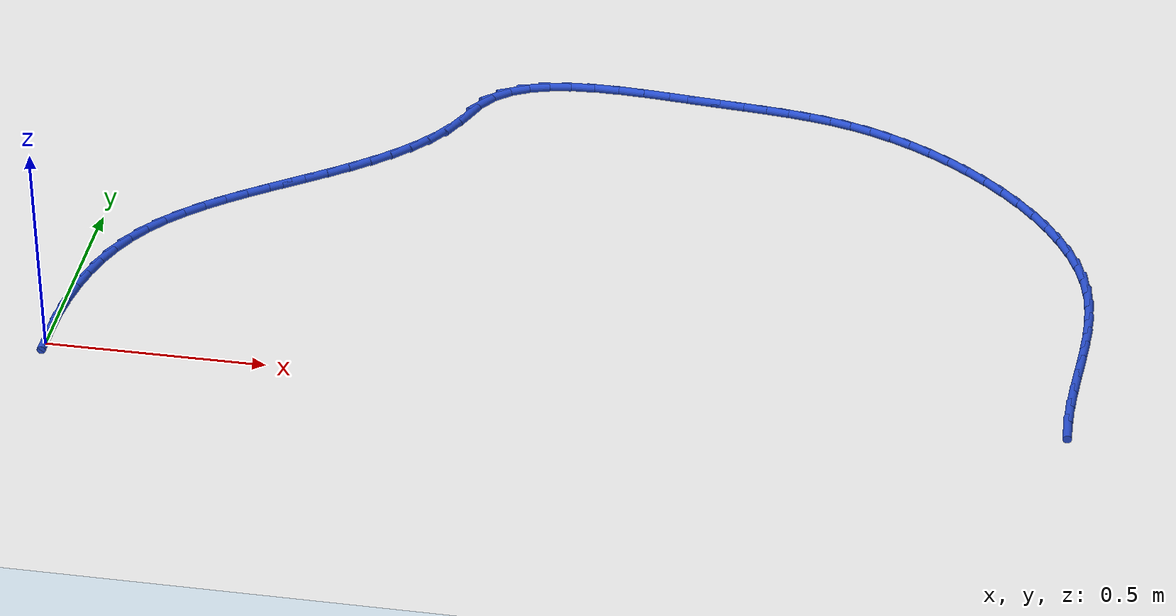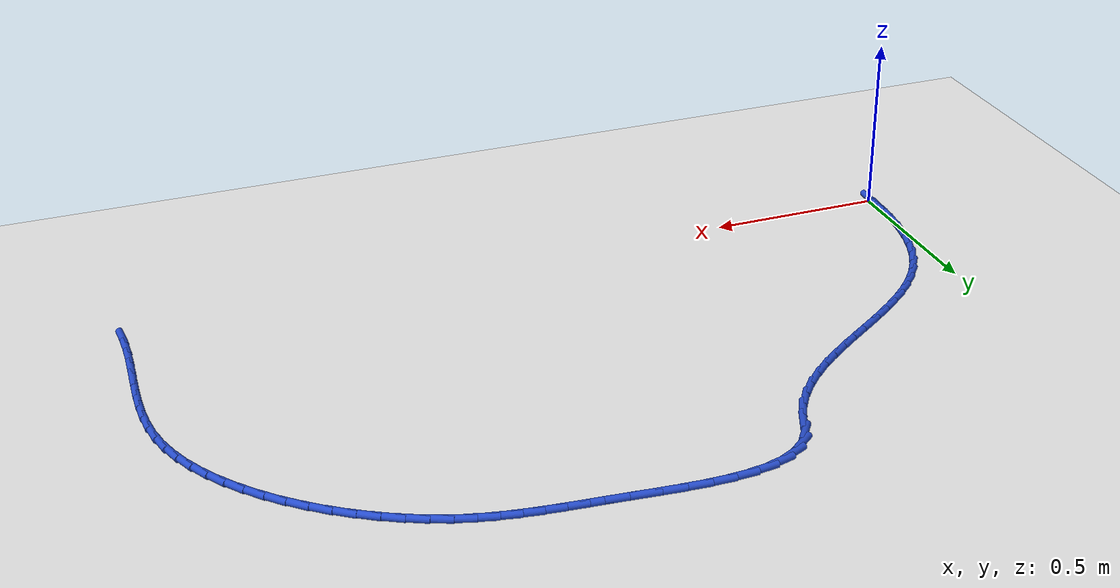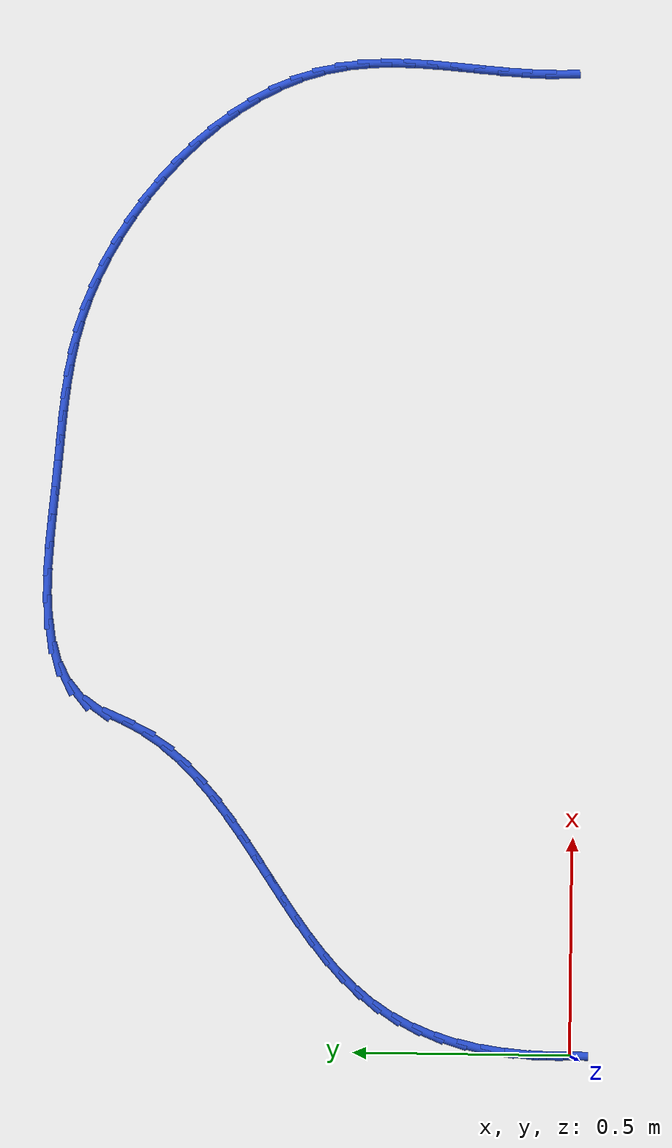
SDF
<sdf version="1.6">
 <world name="default">
  <model name="ground_plane">
   <static>1</static>
   <link name="link">
    <collision name="collision">
     <geometry><plane><normal>0 0 1</normal><size>100 100</size></plane></geometry>
     <surface><friction><ode><mu>100</mu><mu2>50</mu2></ode></friction></surface>
    </collision>
    <visual name="visual">
     <cast_shadows>0</cast_shadows>
     <geometry><plane><normal>0 0 1</normal><size>100 100</size></plane></geometry>
     <material>
      <script><uri>file://media/materials/scripts/gazebo.material</uri><name>Gazebo/WhiteGlow</name></script>
     </material>
    </visual>
   </link>
  </model>
  <model name="line">
   <link name="link_0">
    <pose>-6.938893903907228e-18 -1.3877787807814457e-16 0.01 0 1.57 1.5702225282403262</pose>
    <collision name="collision">
     <geometry><cylinder><radius>0.01</radius><length>0.08</length></cylinder></geometry>
    </collision>
    <visual name="visual">
     <material>
      <script><name>Gazebo/Blue</name><uri>file://media/materials/scripts/gazebo.material</uri></script>
     </material>
     <geometry><cylinder><radius>0.01</radius><length>0.08</length></cylinder></geometry>
    </visual>
   </link>
   <link name="link_1">
    <pose>3.2122297887926364e-05 0.05598183213727158 0.01 0 1.57 1.5219617204032692</pose>
    <collision name="collision">
     <geometry><cylinder><radius>0.01</radius><length>0.08</length></cylinder></geometry>
    </collision>
    <visual name="visual">
     <material>
      <script><name>Gazebo/Blue</name><uri>file://media/materials/scripts/gazebo.material</uri></script>
     </material>
     <geometry><cylinder><radius>0.01</radius><length>0.08</length></cylinder></geometry>
    </visual>
   </link>
   <link name="link_2">
    <pose>0.0027720591368958205 0.1120436827521187 0.01 0 1.57 1.4680645423843748</pose>
    <collision name="collision">
     <geometry><cylinder><radius>0.01</radius><length>0.08</length></cylinder></geometry>
    </collision>
    <visual name="visual">
     <material>
      <script><name>Gazebo/Blue</name><uri>file://media/materials/scripts/gazebo.material</uri></script>
     </material>
     <geometry><cylinder><radius>0.01</radius><length>0.08</length></cylinder></geometry>
    </visual>
   </link>
   <link name="link_3">
    <pose>0.008510602290415246 0.1677065053002968 0.01 0 1.57 1.4074748132549735</pose>
    <collision name="collision">
     <geometry><cylinder><radius>0.01</radius><length>0.08</length></cylinder></geometry>
    </collision>
    <visual name="visual">
     <material>
      <script><name>Gazebo/Blue</name><uri>file://media/materials/scripts/gazebo.material</uri></script>
     </material>
     <geometry><cylinder><radius>0.01</radius><length>0.08</length></cylinder></geometry>
    </visual>
   </link>
   <link name="link_4">
    <pose>0.017538543531837758 0.22249125323756133 0.01 0 1.57 1.3390508978373714</pose>
    <collision name="collision">
     <geometry><cylinder><radius>0.01</radius><length>0.08</length></cylinder></geometry>
    </collision>
    <visual name="visual">
     <material>
      <script><name>Gazebo/Blue</name><uri>file://media/materials/scripts/gazebo.material</uri></script>
     </material>
     <geometry><cylinder><radius>0.01</radius><length>0.08</length></cylinder></geometry>
    </visual>
   </link>
   <link name="link_5">
    <pose>0.030146674634554928 0.2759188800196679 0.01 0 1.57 1.261623660727146</pose>
    <collision name="collision">
     <geometry><cylinder><radius>0.01</radius><length>0.08</length></cylinder></geometry>
    </collision>
    <visual name="visual">
     <material>
      <script><name>Gazebo/Blue</name><uri>file://media/materials/scripts/gazebo.material</uri></script>
     </material>
     <geometry><cylinder><radius>0.01</radius><length>0.08</length></cylinder></geometry>
    </visual>
   </link>
   <link name="link_6">
    <pose>0.046625787371958355 0.3275103391023724 0.01 0 1.57 1.1741198629882972</pose>
    <collision name="collision">
     <geometry><cylinder><radius>0.01</radius><length>0.08</length></cylinder></geometry>
    </collision>
    <visual name="visual">
     <material>
      <script><name>Gazebo/Blue</name><uri>file://media/materials/scripts/gazebo.material</uri></script>
     </material>
     <geometry><cylinder><radius>0.01</radius><length>0.08</length></cylinder></geometry>
    </visual>
   </link>
   <link name="link_7">
    <pose>0.06726667351743955 0.37678658394142994 0.01 0 1.57 1.0757766695661761</pose>
    <collision name="collision">
     <geometry><cylinder><radius>0.01</radius><length>0.08</length></cylinder></geometry>
    </collision>
    <visual name="visual">
     <material>
      <script><name>Gazebo/Blue</name><uri>file://media/materials/scripts/gazebo.material</uri></script>
     </material>
     <geometry><cylinder><radius>0.01</radius><length>0.08</length></cylinder></geometry>
    </visual>
   </link>
   <link name="link_8">
    <pose>0.09236012484439016 0.4232685679925963 0.01 0 1.57 0.9682542700632496</pose>
    <collision name="collision">
     <geometry><cylinder><radius>0.01</radius><length>0.08</length></cylinder></geometry>
    </collision>
    <visual name="visual">
     <material>
      <script><name>Gazebo/Blue</name><uri>file://media/materials/scripts/gazebo.material</uri></script>
     </material>
     <geometry><cylinder><radius>0.01</radius><length>0.08</length></cylinder></geometry>
    </visual>
   </link>
   <link name="link_9">
    <pose>0.12212934081932303 0.4665456296009552 0.01 0 1.57 0.8677020030502103</pose>
    <collision name="collision">
     <geometry><cylinder><radius>0.01</radius><length>0.08</length></cylinder></geometry>
    </collision>
    <visual name="visual">
     <material>
      <script><name>Gazebo/Blue</name><uri>file://media/materials/scripts/gazebo.material</uri></script>
     </material>
     <geometry><cylinder><radius>0.01</radius><length>0.08</length></cylinder></geometry>
    </visual>
   </link>
   <link name="link_10">
    <pose>0.1562314809479822 0.5067797844155647 0.01 0 1.57 0.7831304092725138</pose>
    <collision name="collision">
     <geometry><cylinder><radius>0.01</radius><length>0.08</length></cylinder></geometry>
    </collision>
    <visual name="visual">
     <material>
      <script><name>Gazebo/Blue</name><uri>file://media/materials/scripts/gazebo.material</uri></script>
     </material>
     <geometry><cylinder><radius>0.01</radius><length>0.08</length></cylinder></geometry>
    </visual>
   </link>
   <link name="link_11">
    <pose>0.19404142945407982 0.5444186333068378 0.01 0 1.57 0.7148547844319686</pose>
    <collision name="collision">
     <geometry><cylinder><radius>0.01</radius><length>0.08</length></cylinder></geometry>
    </collision>
    <visual name="visual">
     <material>
      <script><name>Gazebo/Blue</name><uri>file://media/materials/scripts/gazebo.material</uri></script>
     </material>
     <geometry><cylinder><radius>0.01</radius><length>0.08</length></cylinder></geometry>
    </visual>
   </link>
   <link name="link_12">
    <pose>0.2349319980802108 0.5799118739280671 0.01 0 1.57 0.6622686260626698</pose>
    <collision name="collision">
     <geometry><cylinder><radius>0.01</radius><length>0.08</length></cylinder></geometry>
    </collision>
    <visual name="visual">
     <material>
      <script><name>Gazebo/Blue</name><uri>file://media/materials/scripts/gazebo.material</uri></script>
     </material>
     <geometry><cylinder><radius>0.01</radius><length>0.08</length></cylinder></geometry>
    </visual>
   </link>
   <link name="link_13">
    <pose>0.27827599856897034 0.613709203932545 0.01 0 1.57 0.6244390640483001</pose>
    <collision name="collision">
     <geometry><cylinder><radius>0.01</radius><length>0.08</length></cylinder></geometry>
    </collision>
    <visual name="visual">
     <material>
      <script><name>Gazebo/Blue</name><uri>file://media/materials/scripts/gazebo.material</uri></script>
     </material>
     <geometry><cylinder><radius>0.01</radius><length>0.08</length></cylinder></geometry>
    </visual>
   </link>
   <link name="link_14">
    <pose>0.32344624266295324 0.6462603209735643 0.01 0 1.57 0.6004649058718042</pose>
    <collision name="collision">
     <geometry><cylinder><radius>0.01</radius><length>0.08</length></cylinder></geometry>
    </collision>
    <visual name="visual">
     <material>
      <script><name>Gazebo/Blue</name><uri>file://media/materials/scripts/gazebo.material</uri></script>
     </material>
     <geometry><cylinder><radius>0.01</radius><length>0.08</length></cylinder></geometry>
    </visual>
   </link>
   <link name="link_15">
    <pose>0.3698155421047546 0.6780149227044174 0.01 0 1.57 0.5896772273931061</pose>
    <collision name="collision">
     <geometry><cylinder><radius>0.01</radius><length>0.08</length></cylinder></geometry>
    </collision>
    <visual name="visual">
     <material>
      <script><name>Gazebo/Blue</name><uri>file://media/materials/scripts/gazebo.material</uri></script>
     </material>
     <geometry><cylinder><radius>0.01</radius><length>0.08</length></cylinder></geometry>
    </visual>
   </link>
   <link name="link_16">
    <pose>0.41675670863696973 0.7094227067783972 0.01 0 1.57 0.5917354304771028</pose>
    <collision name="collision">
     <geometry><cylinder><radius>0.01</radius><length>0.08</length></cylinder></geometry>
    </collision>
    <visual name="visual">
     <material>
      <script><name>Gazebo/Blue</name><uri>file://media/materials/scripts/gazebo.material</uri></script>
     </material>
     <geometry><cylinder><radius>0.01</radius><length>0.08</length></cylinder></geometry>
    </visual>
   </link>
   <link name="link_17">
    <pose>0.46364255400219306 0.7409333708487956 0.01 0 1.57 0.6066603906495799</pose>
    <collision name="collision">
     <geometry><cylinder><radius>0.01</radius><length>0.08</length></cylinder></geometry>
    </collision>
    <visual name="visual">
     <material>
      <script><name>Gazebo/Blue</name><uri>file://media/materials/scripts/gazebo.material</uri></script>
     </material>
     <geometry><cylinder><radius>0.01</radius><length>0.08</length></cylinder></geometry>
    </visual>
   </link>
   <link name="link_18">
    <pose>0.50984588994302 0.7729966125689057 0.01 0 1.57 0.6348245065593896</pose>
    <collision name="collision">
     <geometry><cylinder><radius>0.01</radius><length>0.08</length></cylinder></geometry>
    </collision>
    <visual name="visual">
     <material>
      <script><name>Gazebo/Blue</name><uri>file://media/materials/scripts/gazebo.material</uri></script>
     </material>
     <geometry><cylinder><radius>0.01</radius><length>0.08</length></cylinder></geometry>
    </visual>
   </link>
   <link name="link_19">
    <pose>0.5547395282020455 0.8060621295920198 0.01 0 1.57 0.6768960546514915</pose>
    <collision name="collision">
     <geometry><cylinder><radius>0.01</radius><length>0.08</length></cylinder></geometry>
    </collision>
    <visual name="visual">
     <material>
      <script><name>Gazebo/Blue</name><uri>file://media/materials/scripts/gazebo.material</uri></script>
     </material>
     <geometry><cylinder><radius>0.01</radius><length>0.08</length></cylinder></geometry>
    </visual>
   </link>
   <link name="link_20">
    <pose>0.5976962805218647 0.8405796195714306 0.01 0 1.57 0.7337136986147049</pose>
    <collision name="collision">
     <geometry><cylinder><radius>0.01</radius><length>0.08</length></cylinder></geometry>
    </collision>
    <visual name="visual">
     <material>
      <script><name>Gazebo/Blue</name><uri>file://media/materials/scripts/gazebo.material</uri></script>
     </material>
     <geometry><cylinder><radius>0.01</radius><length>0.08</length></cylinder></geometry>
    </visual>
   </link>
   <link name="link_21">
    <pose>0.6380889586450723 0.8769987801604304 0.01 0 1.57 0.8060490777768412</pose>
    <collision name="collision">
     <geometry><cylinder><radius>0.01</radius><length>0.08</length></cylinder></geometry>
    </collision>
    <visual name="visual">
     <material>
      <script><name>Gazebo/Blue</name><uri>file://media/materials/scripts/gazebo.material</uri></script>
     </material>
     <geometry><cylinder><radius>0.01</radius><length>0.08</length></cylinder></geometry>
    </visual>
   </link>
   <link name="link_22">
    <pose>0.6752903743142635 0.9157693090123119 0.01 0 1.57 0.8942145418022549</pose>
    <collision name="collision">
     <geometry><cylinder><radius>0.01</radius><length>0.08</length></cylinder></geometry>
    </collision>
    <visual name="visual">
     <material>
      <script><name>Gazebo/Blue</name><uri>file://media/materials/scripts/gazebo.material</uri></script>
     </material>
     <geometry><cylinder><radius>0.01</radius><length>0.08</length></cylinder></geometry>
    </visual>
   </link>
   <link name="link_23">
    <pose>0.7086733392720335 0.9573409037803677 0.01 0 1.57 0.9975202933428055</pose>
    <collision name="collision">
     <geometry><cylinder><radius>0.01</radius><length>0.08</length></cylinder></geometry>
    </collision>
    <visual name="visual">
     <material>
      <script><name>Gazebo/Blue</name><uri>file://media/materials/scripts/gazebo.material</uri></script>
     </material>
     <geometry><cylinder><radius>0.01</radius><length>0.08</length></cylinder></geometry>
    </visual>
   </link>
   <link name="link_24">
    <pose>0.7376106652609772 1.0021632621178906 0.01 0 1.57 1.1136810013321163</pose>
    <collision name="collision">
     <geometry><cylinder><radius>0.01</radius><length>0.08</length></cylinder></geometry>
    </collision>
    <visual name="visual">
     <material>
      <script><name>Gazebo/Blue</name><uri>file://media/materials/scripts/gazebo.material</uri></script>
     </material>
     <geometry><cylinder><radius>0.01</radius><length>0.08</length></cylinder></geometry>
    </visual>
   </link>
   <link name="link_25">
    <pose>0.7614765124189773 1.0506847787572993 0.01 0 1.57 1.1640529269467912</pose>
    <collision name="collision">
     <geometry><cylinder><radius>0.01</radius><length>0.08</length></cylinder></geometry>
    </collision>
    <visual name="visual">
     <material>
      <script><name>Gazebo/Blue</name><uri>file://media/materials/scripts/gazebo.material</uri></script>
     </material>
     <geometry><cylinder><radius>0.01</radius><length>0.08</length></cylinder></geometry>
    </visual>
   </link>
   <link name="link_26">
    <pose>0.7828362127023534 1.1002702983695678 0.01 0 1.57 0.9549133107945891</pose>
    <collision name="collision">
     <geometry><cylinder><radius>0.01</radius><length>0.08</length></cylinder></geometry>
    </collision>
    <visual name="visual">
     <material>
      <script><name>Gazebo/Blue</name><uri>file://media/materials/scripts/gazebo.material</uri></script>
     </material>
     <geometry><cylinder><radius>0.01</radius><length>0.08</length></cylinder></geometry>
    </visual>
   </link>
   <link name="link_27">
    <pose>0.8117233404273001 1.1410879349267236 0.01 0 1.57 0.6807663889096673</pose>
    <collision name="collision">
     <geometry><cylinder><radius>0.01</radius><length>0.08</length></cylinder></geometry>
    </collision>
    <visual name="visual">
     <material>
      <script><name>Gazebo/Blue</name><uri>file://media/materials/scripts/gazebo.material</uri></script>
     </material>
     <geometry><cylinder><radius>0.01</radius><length>0.08</length></cylinder></geometry>
    </visual>
   </link>
   <link name="link_28">
    <pose>0.849546079573539 1.1717216953593381 0.01 0 1.57 0.4457332259470823</pose>
    <collision name="collision">
     <geometry><cylinder><radius>0.01</radius><length>0.08</length></cylinder></geometry>
    </collision>
    <visual name="visual">
     <material>
      <script><name>Gazebo/Blue</name><uri>file://media/materials/scripts/gazebo.material</uri></script>
     </material>
     <geometry><cylinder><radius>0.01</radius><length>0.08</length></cylinder></geometry>
    </visual>
   </link>
   <link name="link_29">
    <pose>0.8949709551513052 1.193425858319838 0.01 0 1.57 0.2650022575327565</pose>
    <collision name="collision">
     <geometry><cylinder><radius>0.01</radius><length>0.08</length></cylinder></geometry>
    </collision>
    <visual name="visual">
     <material>
      <script><name>Gazebo/Blue</name><uri>file://media/materials/scripts/gazebo.material</uri></script>
     </material>
     <geometry><cylinder><radius>0.01</radius><length>0.08</length></cylinder></geometry>
    </visual>
   </link>
   <link name="link_30">
    <pose>0.9466644879328847 1.2074547065882542 0.01 0 1.57 0.1335459545853411</pose>
    <collision name="collision">
     <geometry><cylinder><radius>0.01</radius><length>0.08</length></cylinder></geometry>
    </collision>
    <visual name="visual">
     <material>
      <script><name>Gazebo/Blue</name><uri>file://media/materials/scripts/gazebo.material</uri></script>
     </material>
     <geometry><cylinder><radius>0.01</radius><length>0.08</length></cylinder></geometry>
    </visual>
   </link>
   <link name="link_31">
    <pose>1.0032931986905642 1.2150625229446157 0.01 0 1.57 0.0405066478310615</pose>
    <collision name="collision">
     <geometry><cylinder><radius>0.01</radius><length>0.08</length></cylinder></geometry>
    </collision>
    <visual name="visual">
     <material>
      <script><name>Gazebo/Blue</name><uri>file://media/materials/scripts/gazebo.material</uri></script>
     </material>
     <geometry><cylinder><radius>0.01</radius><length>0.08</length></cylinder></geometry>
    </visual>
   </link>
   <link name="link_32">
    <pose>1.0635236081966288 1.217503590168953 0.01 0 1.57 -0.023538554221004135</pose>
    <collision name="collision">
     <geometry><cylinder><radius>0.01</radius><length>0.08</length></cylinder></geometry>
    </collision>
    <visual name="visual">
     <material>
      <script><name>Gazebo/Blue</name><uri>file://media/materials/scripts/gazebo.material</uri></script>
     </material>
     <geometry><cylinder><radius>0.01</radius><length>0.08</length></cylinder></geometry>
    </visual>
   </link>
   <link name="link_33">
    <pose>1.126022237223365 1.2160321910412966 0.01 0 1.57 -0.0650093727919637</pose>
    <collision name="collision">
     <geometry><cylinder><radius>0.01</radius><length>0.08</length></cylinder></geometry>
    </collision>
    <visual name="visual">
     <material>
      <script><name>Gazebo/Blue</name><uri>file://media/materials/scripts/gazebo.material</uri></script>
     </material>
     <geometry><cylinder><radius>0.01</radius><length>0.08</length></cylinder></geometry>
    </visual>
   </link>
   <link name="link_34">
    <pose>1.1894556065430593 1.2119026083416746 0.01 0 1.57 -0.08756035886712663</pose>
    <collision name="collision">
     <geometry><cylinder><radius>0.01</radius><length>0.08</length></cylinder></geometry>
    </collision>
    <visual name="visual">
     <material>
      <script><name>Gazebo/Blue</name><uri>file://media/materials/scripts/gazebo.material</uri></script>
     </material>
     <geometry><cylinder><radius>0.01</radius><length>0.08</length></cylinder></geometry>
    </visual>
   </link>
   <link name="link_35">
    <pose>1.2524902369279975 1.2063691248501192 0.01 0 1.57 -0.09244694729825857</pose>
    <collision name="collision">
     <geometry><cylinder><radius>0.01</radius><length>0.08</length></cylinder></geometry>
    </collision>
    <visual name="visual">
     <material>
      <script><name>Gazebo/Blue</name><uri>file://media/materials/scripts/gazebo.material</uri></script>
     </material>
     <geometry><cylinder><radius>0.01</radius><length>0.08</length></cylinder></geometry>
    </visual>
   </link>
   <link name="link_36">
    <pose>1.3137929698151114 1.2006856740142207 0.01 0 1.57 -0.08521738920645766</pose>
    <collision name="collision">
     <geometry><cylinder><radius>0.01</radius><length>0.08</length></cylinder></geometry>
    </collision>
    <visual name="visual">
     <material>
      <script><name>Gazebo/Blue</name><uri>file://media/materials/scripts/gazebo.material</uri></script>
     </material>
     <geometry><cylinder><radius>0.01</radius><length>0.08</length></cylinder></geometry>
    </visual>
   </link>
   <link name="link_37">
    <pose>1.3724245067854208 1.195677117583411 0.01 0 1.57 -0.08475441747929263</pose>
    <collision name="collision">
     <geometry><cylinder><radius>0.01</radius><length>0.08</length></cylinder></geometry>
    </collision>
    <visual name="visual">
     <material>
      <script><name>Gazebo/Blue</name><uri>file://media/materials/scripts/gazebo.material</uri></script>
     </material>
     <geometry><cylinder><radius>0.01</radius><length>0.08</length></cylinder></geometry>
    </visual>
   </link>
   <link name="link_38">
    <pose>1.428606067224941 1.1909040478632285 0.01 0 1.57 -0.09586782875110215</pose>
    <collision name="collision">
     <geometry><cylinder><radius>0.01</radius><length>0.08</length></cylinder></geometry>
    </collision>
    <visual name="visual">
     <material>
      <script><name>Gazebo/Blue</name><uri>file://media/materials/scripts/gazebo.material</uri></script>
     </material>
     <geometry><cylinder><radius>0.01</radius><length>0.08</length></cylinder></geometry>
    </visual>
   </link>
   <link name="link_39">
    <pose>1.4827715601830687 1.1856953527930372 0.01 0 1.57 -0.11953076735419567</pose>
    <collision name="collision">
     <geometry><cylinder><radius>0.01</radius><length>0.08</length></cylinder></geometry>
    </collision>
    <visual name="visual">
     <material>
      <script><name>Gazebo/Blue</name><uri>file://media/materials/scripts/gazebo.material</uri></script>
     </material>
     <geometry><cylinder><radius>0.01</radius><length>0.08</length></cylinder></geometry>
    </visual>
   </link>
   <link name="link_40">
    <pose>1.5353548947091977 1.1793799203122013 0.01 0 1.57 -0.1560698015272833</pose>
    <collision name="collision">
     <geometry><cylinder><radius>0.01</radius><length>0.08</length></cylinder></geometry>
    </collision>
    <visual name="visual">
     <material>
      <script><name>Gazebo/Blue</name><uri>file://media/materials/scripts/gazebo.material</uri></script>
     </material>
     <geometry><cylinder><radius>0.01</radius><length>0.08</length></cylinder></geometry>
    </visual>
   </link>
   <link name="link_41">
    <pose>1.5867899798527234 1.1712866383600833 0.01 0 1.57 -0.20493091976538488</pose>
    <collision name="collision">
     <geometry><cylinder><radius>0.01</radius><length>0.08</length></cylinder></geometry>
    </collision>
    <visual name="visual">
     <material>
      <script><name>Gazebo/Blue</name><uri>file://media/materials/scripts/gazebo.material</uri></script>
     </material>
     <geometry><cylinder><radius>0.01</radius><length>0.08</length></cylinder></geometry>
    </visual>
   </link>
   <link name="link_42">
    <pose>1.63751072466304 1.1607443948760483 0.01 0 1.57 -0.2645142195695105</pose>
    <collision name="collision">
     <geometry><cylinder><radius>0.01</radius><length>0.08</length></cylinder></geometry>
    </collision>
    <visual name="visual">
     <material>
      <script><name>Gazebo/Blue</name><uri>file://media/materials/scripts/gazebo.material</uri></script>
     </material>
     <geometry><cylinder><radius>0.01</radius><length>0.08</length></cylinder></geometry>
    </visual>
   </link>
   <link name="link_43">
    <pose>1.687951038189544 1.1470820777994597 0.01 0 1.57 -0.3314979268367801</pose>
    <collision name="collision">
     <geometry><cylinder><radius>0.01</radius><length>0.08</length></cylinder></geometry>
    </collision>
    <visual name="visual">
     <material>
      <script><name>Gazebo/Blue</name><uri>file://media/materials/scripts/gazebo.material</uri></script>
     </material>
     <geometry><cylinder><radius>0.01</radius><length>0.08</length></cylinder></geometry>
    </visual>
   </link>
   <link name="link_44">
    <pose>1.738491869899307 1.12968595402742 0.01 0 1.57 -0.3973964685917838</pose>
    <collision name="collision">
     <geometry><cylinder><radius>0.01</radius><length>0.08</length></cylinder></geometry>
    </collision>
    <visual name="visual">
     <material>
      <script><name>Gazebo/Blue</name><uri>file://media/materials/scripts/gazebo.material</uri></script>
     </material>
     <geometry><cylinder><radius>0.01</radius><length>0.08</length></cylinder></geometry>
    </visual>
   </link>
   <link name="link_45">
    <pose>1.7890196943327938 1.1084780283664384 0.01 0 1.57 -0.4594868693141899</pose>
    <collision name="collision">
     <geometry><cylinder><radius>0.01</radius><length>0.08</length></cylinder></geometry>
    </collision>
    <visual name="visual">
     <material>
      <script><name>Gazebo/Blue</name><uri>file://media/materials/scripts/gazebo.material</uri></script>
     </material>
     <geometry><cylinder><radius>0.01</radius><length>0.08</length></cylinder></geometry>
    </visual>
   </link>
   <link name="link_46">
    <pose>1.8391514358935992 1.083672349201045 0.01 0 1.57 -0.5189401493082975</pose>
    <collision name="collision">
     <geometry><cylinder><radius>0.01</radius><length>0.08</length></cylinder></geometry>
    </collision>
    <visual name="visual">
     <material>
      <script><name>Gazebo/Blue</name><uri>file://media/materials/scripts/gazebo.material</uri></script>
     </material>
     <geometry><cylinder><radius>0.01</radius><length>0.08</length></cylinder></geometry>
    </visual>
   </link>
   <link name="link_47">
    <pose>1.8885013043271217 1.055485906106975 0.01 0 1.57 -0.5768388179129491</pose>
    <collision name="collision">
     <geometry><cylinder><radius>0.01</radius><length>0.08</length></cylinder></geometry>
    </collision>
    <visual name="visual">
     <material>
      <script><name>Gazebo/Blue</name><uri>file://media/materials/scripts/gazebo.material</uri></script>
     </material>
     <geometry><cylinder><radius>0.01</radius><length>0.08</length></cylinder></geometry>
    </visual>
   </link>
   <link name="link_48">
    <pose>1.9366835093787633 1.0241356886599629 0.01 0 1.57 -0.6341779881410391</pose>
    <collision name="collision">
     <geometry><cylinder><radius>0.01</radius><length>0.08</length></cylinder></geometry>
    </collision>
    <visual name="visual">
     <material>
      <script><name>Gazebo/Blue</name><uri>file://media/materials/scripts/gazebo.material</uri></script>
     </material>
     <geometry><cylinder><radius>0.01</radius><length>0.08</length></cylinder></geometry>
    </visual>
   </link>
   <link name="link_49">
    <pose>1.983312260793924 0.9898386864357434 0.01 0 1.57 -0.6918994678060304</pose>
    <collision name="collision">
     <geometry><cylinder><radius>0.01</radius><length>0.08</length></cylinder></geometry>
    </collision>
    <visual name="visual">
     <material>
      <script><name>Gazebo/Blue</name><uri>file://media/materials/scripts/gazebo.material</uri></script>
     </material>
     <geometry><cylinder><radius>0.01</radius><length>0.08</length></cylinder></geometry>
    </visual>
   </link>
   <link name="link_50">
    <pose>2.0280017683180036 0.9528118890100509 0.01 0 1.57 -0.7509218450971212</pose>
    <collision name="collision">
     <geometry><cylinder><radius>0.01</radius><length>0.08</length></cylinder></geometry>
    </collision>
    <visual name="visual">
     <material>
      <script><name>Gazebo/Blue</name><uri>file://media/materials/scripts/gazebo.material</uri></script>
     </material>
     <geometry><cylinder><radius>0.01</radius><length>0.08</length></cylinder></geometry>
    </visual>
   </link>
   <link name="link_51">
    <pose>2.070366241696404 0.913272285958621 0.01 0 1.57 -0.8121655455220732</pose>
    <collision name="collision">
     <geometry><cylinder><radius>0.01</radius><length>0.08</length></cylinder></geometry>
    </collision>
    <visual name="visual">
     <material>
      <script><name>Gazebo/Blue</name><uri>file://media/materials/scripts/gazebo.material</uri></script>
     </material>
     <geometry><cylinder><radius>0.01</radius><length>0.08</length></cylinder></geometry>
    </visual>
   </link>
   <link name="link_52">
    <pose>2.1100198906745256 0.8714368668571877 0.01 0 1.57 -0.8765712412404038</pose>
    <collision name="collision">
     <geometry><cylinder><radius>0.01</radius><length>0.08</length></cylinder></geometry>
    </collision>
    <visual name="visual">
     <material>
      <script><name>Gazebo/Blue</name><uri>file://media/materials/scripts/gazebo.material</uri></script>
     </material>
     <geometry><cylinder><radius>0.01</radius><length>0.08</length></cylinder></geometry>
    </visual>
   </link>
   <link name="link_53">
    <pose>2.1465769249977686 0.8275226212814862 0.01 0 1.57 -0.9451085197990835</pose>
    <collision name="collision">
     <geometry><cylinder><radius>0.01</radius><length>0.08</length></cylinder></geometry>
    </collision>
    <visual name="visual">
     <material>
      <script><name>Gazebo/Blue</name><uri>file://media/materials/scripts/gazebo.material</uri></script>
     </material>
     <geometry><cylinder><radius>0.01</radius><length>0.08</length></cylinder></geometry>
    </visual>
   </link>
   <link name="link_54">
    <pose>2.179651554411533 0.7817465388072509 0.01 0 1.57 -1.0187693902711445</pose>
    <collision name="collision">
     <geometry><cylinder><radius>0.01</radius><length>0.08</length></cylinder></geometry>
    </collision>
    <visual name="visual">
     <material>
      <script><name>Gazebo/Blue</name><uri>file://media/materials/scripts/gazebo.material</uri></script>
     </material>
     <geometry><cylinder><radius>0.01</radius><length>0.08</length></cylinder></geometry>
    </visual>
   </link>
   <link name="link_55">
    <pose>2.2088579886612196 0.7343256090102159 0.01 0 1.57 -1.0985381689861873</pose>
    <collision name="collision">
     <geometry><cylinder><radius>0.01</radius><length>0.08</length></cylinder></geometry>
    </collision>
    <visual name="visual">
     <material>
      <script><name>Gazebo/Blue</name><uri>file://media/materials/scripts/gazebo.material</uri></script>
     </material>
     <geometry><cylinder><radius>0.01</radius><length>0.08</length></cylinder></geometry>
    </visual>
   </link>
   <link name="link_56">
    <pose>2.2338104374922305 0.6854768214661173 0.01 0 1.57 -1.1853263015811197</pose>
    <collision name="collision">
     <geometry><cylinder><radius>0.01</radius><length>0.08</length></cylinder></geometry>
    </collision>
    <visual name="visual">
     <material>
      <script><name>Gazebo/Blue</name><uri>file://media/materials/scripts/gazebo.material</uri></script>
     </material>
     <geometry><cylinder><radius>0.01</radius><length>0.08</length></cylinder></geometry>
    </visual>
   </link>
   <link name="link_57">
    <pose>2.254123110649965 0.6354171657506887 0.01 0 1.57 -1.2798598995778012</pose>
    <collision name="collision">
     <geometry><cylinder><radius>0.01</radius><length>0.08</length></cylinder></geometry>
    </collision>
    <visual name="visual">
     <material>
      <script><name>Gazebo/Blue</name><uri>file://media/materials/scripts/gazebo.material</uri></script>
     </material>
     <geometry><cylinder><radius>0.01</radius><length>0.08</length></cylinder></geometry>
    </visual>
   </link>
   <link name="link_58">
    <pose>2.2694102178798223 0.5843636314396653 0.01 0 1.57 -1.3795031104860749</pose>
    <collision name="collision">
     <geometry><cylinder><radius>0.01</radius><length>0.08</length></cylinder></geometry>
    </collision>
    <visual name="visual">
     <material>
      <script><name>Gazebo/Blue</name><uri>file://media/materials/scripts/gazebo.material</uri></script>
     </material>
     <geometry><cylinder><radius>0.01</radius><length>0.08</length></cylinder></geometry>
    </visual>
   </link>
   <link name="link_59">
    <pose>2.279451374925731 0.5325145465817072 0.01 0 1.57 -1.4682625775375797</pose>
    <collision name="collision">
     <geometry><cylinder><radius>0.01</radius><length>0.08</length></cylinder></geometry>
    </collision>
    <visual name="visual">
     <material>
      <script><name>Gazebo/Blue</name><uri>file://media/materials/scripts/gazebo.material</uri></script>
     </material>
     <geometry><cylinder><radius>0.01</radius><length>0.08</length></cylinder></geometry>
    </visual>
   </link>
   <link name="link_60">
    <pose>2.2848574660091914 0.4799744533934094 0.01 0 1.57 -1.5399068745585391</pose>
    <collision name="collision">
     <geometry><cylinder><radius>0.01</radius><length>0.08</length></cylinder></geometry>
    </collision>
    <visual name="visual">
     <material>
      <script><name>Gazebo/Blue</name><uri>file://media/materials/scripts/gazebo.material</uri></script>
     </material>
     <geometry><cylinder><radius>0.01</radius><length>0.08</length></cylinder></geometry>
    </visual>
   </link>
   <link name="link_61">
    <pose>2.2864999468527034 0.4268184957493223 0.01 0 1.57 1.5475294024090605</pose>
    <collision name="collision">
     <geometry><cylinder><radius>0.01</radius><length>0.08</length></cylinder></geometry>
    </collision>
    <visual name="visual">
     <material>
      <script><name>Gazebo/Blue</name><uri>file://media/materials/scripts/gazebo.material</uri></script>
     </material>
     <geometry><cylinder><radius>0.01</radius><length>0.08</length></cylinder></geometry>
    </visual>
   </link>
   <link name="link_62">
    <pose>2.2852503645656044 0.3731218072135017 0.01 0 1.57 1.510493599919556</pose>
    <collision name="collision">
     <geometry><cylinder><radius>0.01</radius><length>0.08</length></cylinder></geometry>
    </collision>
    <visual name="visual">
     <material>
      <script><name>Gazebo/Blue</name><uri>file://media/materials/scripts/gazebo.material</uri></script>
     </material>
     <geometry><cylinder><radius>0.01</radius><length>0.08</length></cylinder></geometry>
    </visual>
   </link>
   <link name="link_63">
    <pose>2.281980266257231 0.31895952135000183 0.01 0 1.57 1.489967416426141</pose>
    <collision name="collision">
     <geometry><cylinder><radius>0.01</radius><length>0.08</length></cylinder></geometry>
    </collision>
    <visual name="visual">
     <material>
      <script><name>Gazebo/Blue</name><uri>file://media/materials/scripts/gazebo.material</uri></script>
     </material>
     <geometry><cylinder><radius>0.01</radius><length>0.08</length></cylinder></geometry>
    </visual>
   </link>
   <link name="link_64">
    <pose>2.277561199036918 0.26440677172287835 0.01 0 1.57 1.4854084417152182</pose>
    <collision name="collision">
     <geometry><cylinder><radius>0.01</radius><length>0.08</length></cylinder></geometry>
    </collision>
    <visual name="visual">
     <material>
      <script><name>Gazebo/Blue</name><uri>file://media/materials/scripts/gazebo.material</uri></script>
     </material>
     <geometry><cylinder><radius>0.01</radius><length>0.08</length></cylinder></geometry>
    </visual>
   </link>
   <link name="link_65">
    <pose>2.2728647100140043 0.2095386918961859 0.01 0 1.57 1.4964915000347971</pose>
    <collision name="collision">
     <geometry><cylinder><radius>0.01</radius><length>0.08</length></cylinder></geometry>
    </collision>
    <visual name="visual">
     <material>
      <script><name>Gazebo/Blue</name><uri>file://media/materials/scripts/gazebo.material</uri></script>
     </material>
     <geometry><cylinder><radius>0.01</radius><length>0.08</length></cylinder></geometry>
    </visual>
   </link>
   <link name="link_66">
    <pose>2.2687623462978244 0.15443041543397884 0.01 0 1.57 1.5231296927421487</pose>
    <collision name="collision">
     <geometry><cylinder><radius>0.01</radius><length>0.08</length></cylinder></geometry>
    </collision>
    <visual name="visual">
     <material>
      <script><name>Gazebo/Blue</name><uri>file://media/materials/scripts/gazebo.material</uri></script>
     </material>
     <geometry><cylinder><radius>0.01</radius><length>0.08</length></cylinder></geometry>
    </visual>
   </link>
   <link name="link_67">
    <pose>2.266125654997715 0.0991570759003132 0.01 0 1.57 1.5650289437432428</pose>
    <collision name="collision">
     <geometry><cylinder><radius>0.01</radius><length>0.08</length></cylinder></geometry>
    </collision>
    <visual name="visual">
     <material>
      <script><name>Gazebo/Blue</name><uri>file://media/materials/scripts/gazebo.material</uri></script>
     </material>
     <geometry><cylinder><radius>0.01</radius><length>0.08</length></cylinder></geometry>
    </visual>
   </link>
   <link name="link_68">
    <pose>2.2658063513145645 0.04379398661334496 0.01 0 1.57 -1.5314216455627647</pose>
    <collision name="collision">
     <geometry><cylinder><radius>0.01</radius><length>0.08</length></cylinder></geometry>
    </collision>
    <visual name="visual">
     <material>
      <script><name>Gazebo/Blue</name><uri>file://media/materials/scripts/gazebo.material</uri></script>
     </material>
     <geometry><cylinder><radius>0.01</radius><length>0.08</length></cylinder></geometry>
    </visual>
   </link>
   <link name="link_140">
    <pose>-1.734723475976807e-18 -1.6653345369377348e-16 0.01 0 1.57 -1.5702840200063313</pose>
    <collision name="collision">
     <geometry><cylinder><radius>0.01</radius><length>0.08</length></cylinder></geometry>
    </collision>
    <visual name="visual">
     <material>
      <script><name>Gazebo/Blue</name><uri>file://media/materials/scripts/gazebo.material</uri></script>
     </material>
     <geometry><cylinder><radius>0.01</radius><length>0.08</length></cylinder></geometry>
    </visual>
   </link>
   <link name="link_141">
    <pose>-2.8714640823712667e-05 0.056049693176983446 0.01 0 1.57 -1.5702840200063313</pose>
    <collision name="collision">
     <geometry><cylinder><radius>0.01</radius><length>0.08</length></cylinder></geometry>
    </collision>
    <visual name="visual">
     <material>
      <script><name>Gazebo/Blue</name><uri>file://media/materials/scripts/gazebo.material</uri></script>
     </material>
     <geometry><cylinder><radius>0.01</radius><length>0.08</length></cylinder></geometry>
    </visual>
   </link>
  </model>
 </world>
</sdf>
